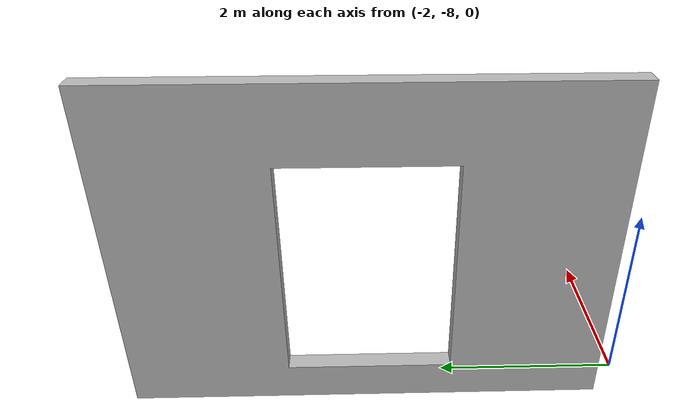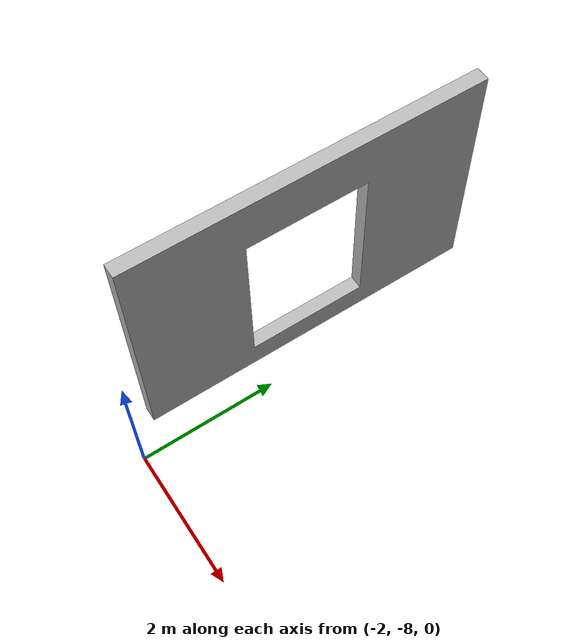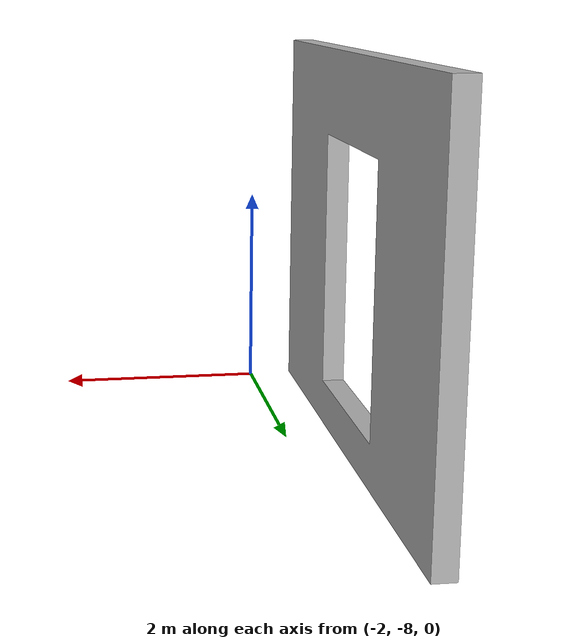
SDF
<?xml version="1.0"?>
<sdf version="1.5">
    <model name="house_wall_11">
        <static>true</static>
        <link name="link">
            <collision name="collision_wall">
                <pose>0 0 0.05 0 0 0</pose>
                <geometry>
                    <mesh>
                        <uri>model://house_scene_2_wall_11/meshes/sc11qr.dae</uri>
                    </mesh>
                </geometry>
            </collision>
            <visual name="visual_walls">
              <pose>0 0 0.05 0 0 0</pose>
              <geometry>
              <mesh>
                 <uri>model://house_scene_2_wall_11/meshes/sc11qr.dae</uri>
              </mesh>
              </geometry>
             </visual>
        </link>
    </model>
</sdf>
